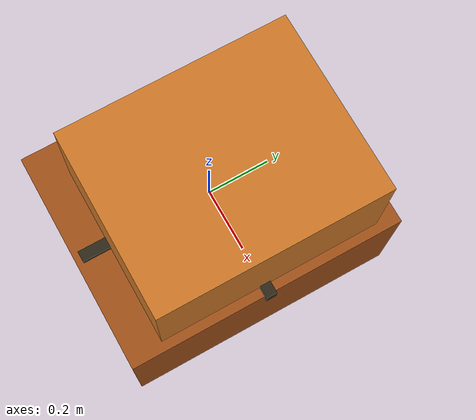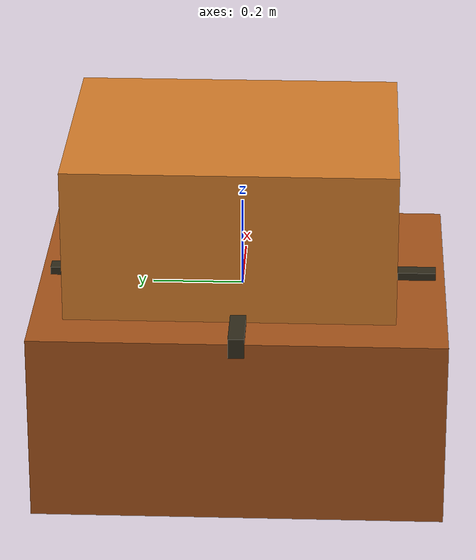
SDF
<?xml version="1.0"?>
<sdf version="1.6">
  <model name="cleannav_demo_static_block">
    <static>true</static>
    <link name="link">
      <collision name="collision">
        <geometry>
          <box>
            <size>0.80 1.00 0.80</size>
          </box>
        </geometry>
      </collision>
      <visual name="visual_base_box">
        <pose>0 0 -0.19 0 0 0</pose>
        <geometry>
          <box>
            <size>0.72 0.90 0.42</size>
          </box>
        </geometry>
        <material>
          <ambient>0.40 0.19 0.06 1</ambient>
          <diffuse>0.64 0.32 0.10 1</diffuse>
        </material>
      </visual>
      <visual name="visual_top_box">
        <pose>0.04 0.02 0.19 0 0 0</pose>
        <geometry>
          <box>
            <size>0.58 0.72 0.34</size>
          </box>
        </geometry>
        <material>
          <ambient>0.52 0.28 0.08 1</ambient>
          <diffuse>0.82 0.48 0.16 1</diffuse>
        </material>
      </visual>
      <visual name="visual_strap_x">
        <pose>0 0 0.015 0 0 0</pose>
        <geometry>
          <box>
            <size>0.74 0.035 0.045</size>
          </box>
        </geometry>
        <material>
          <ambient>0.08 0.08 0.06 1</ambient>
          <diffuse>0.18 0.16 0.10 1</diffuse>
        </material>
      </visual>
      <visual name="visual_strap_y">
        <pose>0 0 0.015 0 0 1.57079632679</pose>
        <geometry>
          <box>
            <size>0.86 0.035 0.045</size>
          </box>
        </geometry>
        <material>
          <ambient>0.08 0.08 0.06 1</ambient>
          <diffuse>0.18 0.16 0.10 1</diffuse>
        </material>
      </visual>
    </link>
  </model>
</sdf>
